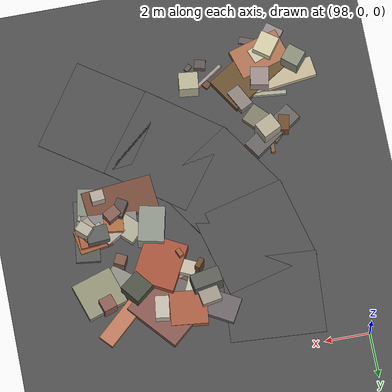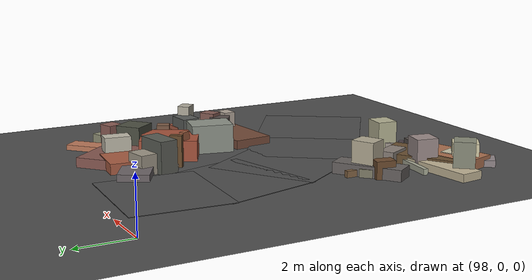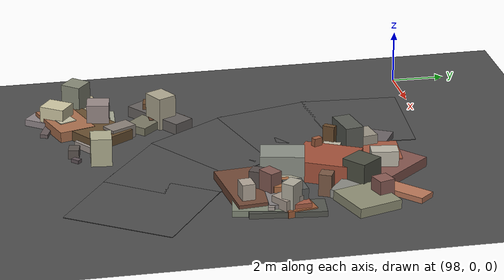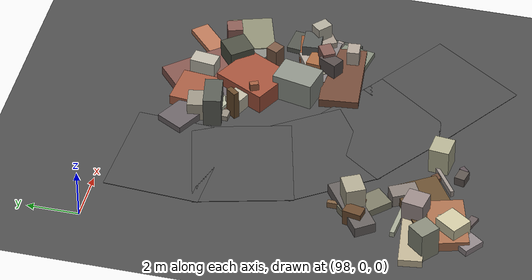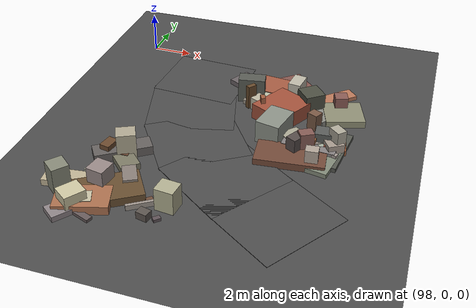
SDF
<sdf version="1.6">
 <world name="navitas_arena">
  <model name="ground_plane">
   <static>true</static>
   <link name="link">
    <collision name="collision">
     <geometry><plane><normal>0 0 1</normal><size>400 400</size></plane></geometry>
     <surface><friction><ode><mu>0.800</mu><mu2>0.800</mu2></ode></friction></surface>
    </collision>
    <visual name="visual">
     <cast_shadows>false</cast_shadows>
     <geometry><plane><normal>0 0 1</normal><size>400 400</size></plane></geometry>
     <material>
      <specular>0.04 0.04 0.04 1</specular>
      <script>
       <uri>file://media/materials/scripts/navitas_asphalt.material</uri>
       <name>Navitas/RealArenaAsphalt</name>
      </script>
     </material>
    </visual>
   </link>
  </model>
  <model name="road_zor_3_9">
   <static>true</static>
   <pose>107.779 -11.646 0.040 0 0 2.543</pose>
   <link name="link">
    <collision name="col"><geometry><box><size>4.133 4.200 0.020</size></box></geometry></collision>
    <visual name="vis">
     <geometry><box><size>4.133 4.200 0.020</size></box></geometry>
     <material>
      <specular>0.04 0.04 0.04 1</specular>
      <script>
       <uri>file://media/materials/scripts/navitas_asphalt.material</uri>
       <name>Navitas/RealArenaAsphalt</name>
      </script>
     </material>
    </visual>
   </link>
  </model>
  <model name="road_zor_3_10">
   <static>true</static>
   <pose>105.192 -9.813 0.040 0 0 2.507</pose>
   <link name="link">
    <collision name="col"><geometry><box><size>4.009 4.200 0.020</size></box></geometry></collision>
    <visual name="vis">
     <geometry><box><size>4.009 4.200 0.020</size></box></geometry>
     <material>
      <specular>0.04 0.04 0.04 1</specular>
      <script>
       <uri>file://media/materials/scripts/navitas_asphalt.material</uri>
       <name>Navitas/RealArenaAsphalt</name>
      </script>
     </material>
    </visual>
   </link>
  </model>
  <model name="road_zor_3_11">
   <static>true</static>
   <pose>103.181 -7.746 0.040 0 0 2.156</pose>
   <link name="link">
    <collision name="col"><geometry><box><size>3.649 4.200 0.020</size></box></geometry></collision>
    <visual name="vis">
     <geometry><box><size>3.649 4.200 0.020</size></box></geometry>
     <material>
      <specular>0.04 0.04 0.04 1</specular>
      <script>
       <uri>file://media/materials/scripts/navitas_asphalt.material</uri>
       <name>Navitas/RealArenaAsphalt</name>
      </script>
     </material>
    </visual>
   </link>
  </model>
  <model name="road_zor_3_12">
   <static>true</static>
   <pose>102.061 -5.200 0.040 0 0 1.823</pose>
   <link name="link">
    <collision name="col"><geometry><box><size>3.792 4.200 0.020</size></box></geometry></collision>
    <visual name="vis">
     <geometry><box><size>3.792 4.200 0.020</size></box></geometry>
     <material>
      <specular>0.04 0.04 0.04 1</specular>
      <script>
       <uri>file://media/materials/scripts/navitas_asphalt.material</uri>
       <name>Navitas/RealArenaAsphalt</name>
      </script>
     </material>
    </visual>
   </link>
  </model>
  <model name="road_zor_3_13">
   <static>true</static>
   <pose>101.792 -2.400 0.040 0 0 1.505</pose>
   <link name="link">
    <collision name="col"><geometry><box><size>3.706 4.200 0.020</size></box></geometry></collision>
    <visual name="vis">
     <geometry><box><size>3.706 4.200 0.020</size></box></geometry>
     <material>
      <specular>0.04 0.04 0.04 1</specular>
      <script>
       <uri>file://media/materials/scripts/navitas_asphalt.material</uri>
       <name>Navitas/RealArenaAsphalt</name>
      </script>
     </material>
    </visual>
   </link>
  </model>
  <model name="deb_zor_4">
   <static>true</static>
   <pose>105.917 -2.960 0.000 0 0 0</pose>
   <link name="link">
    <collision name="col_0">
     <pose>-0.869 -0.371 0.104 0.000 0.000 1.516</pose>
     <geometry><box><size>1.538 1.400 0.208</size></box></geometry>
    </collision>
    <visual name="vis_0">
     <pose>-0.869 -0.371 0.104 0.000 0.000 1.516</pose>
     <geometry><box><size>1.538 1.400 0.208</size></box></geometry>
     <material>
      <ambient>0.53 0.51 0.47 1</ambient>
      <diffuse>0.58 0.55 0.50 1</diffuse>
      <specular>0.05 0.05 0.045 1</specular>
     </material>
    </visual>
    <collision name="col_1">
     <pose>0.757 0.369 0.475 0.000 0.000 1.436</pose>
     <geometry><box><size>0.993 0.613 0.950</size></box></geometry>
    </collision>
    <visual name="vis_1">
     <pose>0.757 0.369 0.475 0.000 0.000 1.436</pose>
     <geometry><box><size>0.993 0.613 0.950</size></box></geometry>
     <material>
      <ambient>0.69 0.66 0.61 1</ambient>
      <diffuse>0.74 0.72 0.66 1</diffuse>
      <specular>0.05 0.05 0.045 1</specular>
     </material>
    </visual>
    <collision name="col_2">
     <pose>0.717 0.454 0.186 0.000 0.000 -0.858</pose>
     <geometry><box><size>2.653 1.747 0.373</size></box></geometry>
    </collision>
    <visual name="vis_2">
     <pose>0.717 0.454 0.186 0.000 0.000 -0.858</pose>
     <geometry><box><size>2.653 1.747 0.373</size></box></geometry>
     <material>
      <ambient>0.48 0.32 0.29 1</ambient>
      <diffuse>0.52 0.34 0.31 1</diffuse>
      <specular>0.05 0.05 0.045 1</specular>
     </material>
    </visual>
    <collision name="col_3">
     <pose>-0.387 0.467 0.201 0.000 0.000 1.464</pose>
     <geometry><box><size>1.514 1.630 0.402</size></box></geometry>
    </collision>
    <visual name="vis_3">
     <pose>-0.387 0.467 0.201 0.000 0.000 1.464</pose>
     <geometry><box><size>1.514 1.630 0.402</size></box></geometry>
     <material>
      <ambient>0.60 0.33 0.24 1</ambient>
      <diffuse>0.65 0.36 0.26 1</diffuse>
      <specular>0.05 0.05 0.045 1</specular>
     </material>
    </visual>
    <collision name="col_4">
     <pose>-0.833 -0.400 0.062 0.000 0.000 -0.284</pose>
     <geometry><box><size>1.115 0.293 0.125</size></box></geometry>
    </collision>
    <visual name="vis_4">
     <pose>-0.833 -0.400 0.062 0.000 0.000 -0.284</pose>
     <geometry><box><size>1.115 0.293 0.125</size></box></geometry>
     <material>
      <ambient>0.46 0.45 0.42 1</ambient>
      <diffuse>0.50 0.49 0.46 1</diffuse>
      <specular>0.05 0.05 0.045 1</specular>
     </material>
    </visual>
   </link>
  </model>
  <model name="deb_zor_24">
   <static>true</static>
   <pose>108.216 -3.610 0.000 0 0 0</pose>
   <link name="link">
    <collision name="col_0">
     <pose>-1.013 -0.223 0.219 0.000 0.000 2.988</pose>
     <geometry><box><size>0.735 0.430 0.438</size></box></geometry>
    </collision>
    <visual name="vis_0">
     <pose>-1.013 -0.223 0.219 0.000 0.000 2.988</pose>
     <geometry><box><size>0.735 0.430 0.438</size></box></geometry>
     <material>
      <ambient>0.39 0.24 0.17 1</ambient>
      <diffuse>0.43 0.26 0.18 1</diffuse>
      <specular>0.05 0.05 0.045 1</specular>
     </material>
    </visual>
    <collision name="col_1">
     <pose>0.015 0.925 0.104 0.000 0.000 3.880</pose>
     <geometry><box><size>2.978 0.718 0.207</size></box></geometry>
    </collision>
    <visual name="vis_1">
     <pose>0.015 0.925 0.104 0.000 0.000 3.880</pose>
     <geometry><box><size>2.978 0.718 0.207</size></box></geometry>
     <material>
      <ambient>0.68 0.43 0.32 1</ambient>
      <diffuse>0.73 0.47 0.35 1</diffuse>
      <specular>0.05 0.05 0.045 1</specular>
     </material>
    </visual>
    <collision name="col_2">
     <pose>-0.131 -0.549 0.159 0.000 0.000 2.506</pose>
     <geometry><box><size>1.549 0.954 0.317</size></box></geometry>
    </collision>
    <visual name="vis_2">
     <pose>-0.131 -0.549 0.159 0.000 0.000 2.506</pose>
     <geometry><box><size>1.549 0.954 0.317</size></box></geometry>
     <material>
      <ambient>0.50 0.50 0.47 1</ambient>
      <diffuse>0.54 0.54 0.51 1</diffuse>
      <specular>0.05 0.05 0.045 1</specular>
     </material>
    </visual>
    <collision name="col_3">
     <pose>-0.624 -0.048 0.538 0.000 0.000 3.810</pose>
     <geometry><box><size>0.987 0.981 1.076</size></box></geometry>
    </collision>
    <visual name="vis_3">
     <pose>-0.624 -0.048 0.538 0.000 0.000 3.810</pose>
     <geometry><box><size>0.987 0.981 1.076</size></box></geometry>
     <material>
      <ambient>0.28 0.29 0.24 1</ambient>
      <diffuse>0.30 0.31 0.26 1</diffuse>
      <specular>0.05 0.05 0.045 1</specular>
     </material>
    </visual>
    <collision name="col_4">
     <pose>0.739 0.391 0.430 0.000 0.000 1.889</pose>
     <geometry><box><size>0.593 0.608 0.861</size></box></geometry>
    </collision>
    <visual name="vis_4">
     <pose>0.739 0.391 0.430 0.000 0.000 1.889</pose>
     <geometry><box><size>0.593 0.608 0.861</size></box></geometry>
     <material>
      <ambient>0.50 0.34 0.30 1</ambient>
      <diffuse>0.54 0.36 0.33 1</diffuse>
      <specular>0.05 0.05 0.045 1</specular>
     </material>
    </visual>
    <collision name="col_5">
     <pose>-1.017 0.056 0.117 0.000 0.000 1.349</pose>
     <geometry><box><size>1.388 0.268 0.235</size></box></geometry>
    </collision>
    <visual name="vis_5">
     <pose>-1.017 0.056 0.117 0.000 0.000 1.349</pose>
     <geometry><box><size>1.388 0.268 0.235</size></box></geometry>
     <material>
      <ambient>0.27 0.28 0.23 1</ambient>
      <diffuse>0.29 0.30 0.25 1</diffuse>
      <specular>0.05 0.05 0.045 1</specular>
     </material>
    </visual>
    <collision name="col_6">
     <pose>0.996 -0.229 0.175 0.000 0.000 3.455</pose>
     <geometry><box><size>1.843 1.695 0.351</size></box></geometry>
    </collision>
    <visual name="vis_6">
     <pose>0.996 -0.229 0.175 0.000 0.000 3.455</pose>
     <geometry><box><size>1.843 1.695 0.351</size></box></geometry>
     <material>
      <ambient>0.52 0.52 0.43 1</ambient>
      <diffuse>0.56 0.56 0.46 1</diffuse>
      <specular>0.05 0.05 0.045 1</specular>
     </material>
    </visual>
   </link>
  </model>
  <model name="deb_zor_90">
   <static>true</static>
   <pose>105.127 -2.746 0.000 0 0 0</pose>
   <link name="link">
    <collision name="col_0">
     <pose>-0.333 0.004 0.153 0.000 0.000 2.628</pose>
     <geometry><box><size>3.080 1.144 0.305</size></box></geometry>
    </collision>
    <visual name="vis_0">
     <pose>-0.333 0.004 0.153 0.000 0.000 2.628</pose>
     <geometry><box><size>3.080 1.144 0.305</size></box></geometry>
     <material>
      <ambient>0.39 0.36 0.37 1</ambient>
      <diffuse>0.42 0.39 0.40 1</diffuse>
      <specular>0.05 0.05 0.045 1</specular>
     </material>
    </visual>
    <collision name="col_1">
     <pose>-0.031 -0.489 0.105 0.000 0.000 1.856</pose>
     <geometry><box><size>1.610 1.021 0.210</size></box></geometry>
    </collision>
    <visual name="vis_1">
     <pose>-0.031 -0.489 0.105 0.000 0.000 1.856</pose>
     <geometry><box><size>1.610 1.021 0.210</size></box></geometry>
     <material>
      <ambient>0.39 0.28 0.23 1</ambient>
      <diffuse>0.42 0.30 0.25 1</diffuse>
      <specular>0.05 0.05 0.045 1</specular>
     </material>
    </visual>
    <collision name="col_2">
     <pose>-0.590 -0.078 0.378 0.000 0.000 1.746</pose>
     <geometry><box><size>0.722 0.877 0.756</size></box></geometry>
    </collision>
    <visual name="vis_2">
     <pose>-0.590 -0.078 0.378 0.000 0.000 1.746</pose>
     <geometry><box><size>0.722 0.877 0.756</size></box></geometry>
     <material>
      <ambient>0.57 0.54 0.48 1</ambient>
      <diffuse>0.61 0.58 0.52 1</diffuse>
      <specular>0.05 0.05 0.045 1</specular>
     </material>
    </visual>
    <collision name="col_3">
     <pose>0.079 -0.286 0.165 0.000 0.000 1.030</pose>
     <geometry><box><size>0.456 0.334 0.330</size></box></geometry>
    </collision>
    <visual name="vis_3">
     <pose>0.079 -0.286 0.165 0.000 0.000 1.030</pose>
     <geometry><box><size>0.456 0.334 0.330</size></box></geometry>
     <material>
      <ambient>0.67 0.66 0.56 1</ambient>
      <diffuse>0.72 0.71 0.60 1</diffuse>
      <specular>0.05 0.05 0.045 1</specular>
     </material>
    </visual>
    <collision name="col_4">
     <pose>0.059 -0.212 0.182 0.000 0.000 1.119</pose>
     <geometry><box><size>1.961 0.928 0.364</size></box></geometry>
    </collision>
    <visual name="vis_4">
     <pose>0.059 -0.212 0.182 0.000 0.000 1.119</pose>
     <geometry><box><size>1.961 0.928 0.364</size></box></geometry>
     <material>
      <ambient>0.68 0.68 0.60 1</ambient>
      <diffuse>0.73 0.74 0.65 1</diffuse>
      <specular>0.05 0.05 0.045 1</specular>
     </material>
    </visual>
   </link>
  </model>
  <model name="deb_zor_169">
   <static>true</static>
   <pose>103.278 -12.954 0.000 0 0 0</pose>
   <link name="link">
    <collision name="col_0">
     <pose>-0.290 -0.443 0.172 0.000 0.000 2.914</pose>
     <geometry><box><size>0.502 0.396 0.344</size></box></geometry>
    </collision>
    <visual name="vis_0">
     <pose>-0.290 -0.443 0.172 0.000 0.000 2.914</pose>
     <geometry><box><size>0.502 0.396 0.344</size></box></geometry>
     <material>
      <ambient>0.33 0.31 0.29 1</ambient>
      <diffuse>0.36 0.33 0.31 1</diffuse>
      <specular>0.05 0.05 0.045 1</specular>
     </material>
    </visual>
    <collision name="col_1">
     <pose>0.247 -0.432 0.069 0.000 0.000 2.336</pose>
     <geometry><box><size>0.211 0.323 0.137</size></box></geometry>
    </collision>
    <visual name="vis_1">
     <pose>0.247 -0.432 0.069 0.000 0.000 2.336</pose>
     <geometry><box><size>0.211 0.323 0.137</size></box></geometry>
     <material>
      <ambient>0.34 0.29 0.31 1</ambient>
      <diffuse>0.37 0.32 0.34 1</diffuse>
      <specular>0.05 0.05 0.045 1</specular>
     </material>
    </visual>
    <collision name="col_2">
     <pose>-0.410 0.477 0.085 0.000 0.000 2.315</pose>
     <geometry><box><size>0.337 0.306 0.169</size></box></geometry>
    </collision>
    <visual name="vis_2">
     <pose>-0.410 0.477 0.085 0.000 0.000 2.315</pose>
     <geometry><box><size>0.337 0.306 0.169</size></box></geometry>
     <material>
      <ambient>0.40 0.28 0.21 1</ambient>
      <diffuse>0.43 0.30 0.22 1</diffuse>
      <specular>0.05 0.05 0.045 1</specular>
     </material>
    </visual>
    <collision name="col_3">
     <pose>0.388 0.465 0.531 0.000 0.000 3.031</pose>
     <geometry><box><size>0.856 0.775 1.062</size></box></geometry>
    </collision>
    <visual name="vis_3">
     <pose>0.388 0.465 0.531 0.000 0.000 3.031</pose>
     <geometry><box><size>0.856 0.775 1.062</size></box></geometry>
     <material>
      <ambient>0.65 0.64 0.53 1</ambient>
      <diffuse>0.70 0.69 0.57 1</diffuse>
      <specular>0.05 0.05 0.045 1</specular>
     </material>
    </visual>
    <collision name="col_4">
     <pose>-0.396 0.273 0.124 0.000 0.000 3.730</pose>
     <geometry><box><size>1.881 0.135 0.248</size></box></geometry>
    </collision>
    <visual name="vis_4">
     <pose>-0.396 0.273 0.124 0.000 0.000 3.730</pose>
     <geometry><box><size>1.881 0.135 0.248</size></box></geometry>
     <material>
      <ambient>0.57 0.53 0.51 1</ambient>
      <diffuse>0.62 0.58 0.55 1</diffuse>
      <specular>0.05 0.05 0.045 1</specular>
     </material>
    </visual>
   </link>
  </model>
  <model name="deb_zor_230">
   <static>true</static>
   <pose>99.409 -12.967 0.000 0 0 0</pose>
   <link name="link">
    <collision name="col_0">
     <pose>0.235 -0.076 0.172 0.000 0.000 2.997</pose>
     <geometry><box><size>1.940 0.258 0.343</size></box></geometry>
    </collision>
    <visual name="vis_0">
     <pose>0.235 -0.076 0.172 0.000 0.000 2.997</pose>
     <geometry><box><size>1.940 0.258 0.343</size></box></geometry>
     <material>
      <ambient>0.55 0.34 0.23 1</ambient>
      <diffuse>0.60 0.37 0.25 1</diffuse>
      <specular>0.05 0.05 0.045 1</specular>
     </material>
    </visual>
    <collision name="col_1">
     <pose>-0.747 0.686 0.099 0.000 0.000 3.242</pose>
     <geometry><box><size>1.246 0.169 0.198</size></box></geometry>
    </collision>
    <visual name="vis_1">
     <pose>-0.747 0.686 0.099 0.000 0.000 3.242</pose>
     <geometry><box><size>1.246 0.169 0.198</size></box></geometry>
     <material>
      <ambient>0.71 0.63 0.56 1</ambient>
      <diffuse>0.77 0.68 0.61 1</diffuse>
      <specular>0.05 0.05 0.045 1</specular>
     </material>
    </visual>
    <collision name="col_2">
     <pose>0.072 0.727 0.152 0.000 0.000 3.269</pose>
     <geometry><box><size>2.894 0.888 0.303</size></box></geometry>
    </collision>
    <visual name="vis_2">
     <pose>0.072 0.727 0.152 0.000 0.000 3.269</pose>
     <geometry><box><size>2.894 0.888 0.303</size></box></geometry>
     <material>
      <ambient>0.69 0.65 0.54 1</ambient>
      <diffuse>0.75 0.70 0.58 1</diffuse>
      <specular>0.05 0.05 0.045 1</specular>
     </material>
    </visual>
    <collision name="col_3">
     <pose>-0.492 0.227 0.625 0.000 0.000 0.877</pose>
     <geometry><box><size>0.776 0.806 1.249</size></box></geometry>
    </collision>
    <visual name="vis_3">
     <pose>-0.492 0.227 0.625 0.000 0.000 0.877</pose>
     <geometry><box><size>0.776 0.806 1.249</size></box></geometry>
     <material>
      <ambient>0.49 0.50 0.44 1</ambient>
      <diffuse>0.53 0.54 0.47 1</diffuse>
      <specular>0.05 0.05 0.045 1</specular>
     </material>
    </visual>
   </link>
  </model>
  <model name="deb_zor_287">
   <static>true</static>
   <pose>108.343 -6.725 0.000 0 0 0</pose>
   <link name="link">
    <collision name="col_0">
     <pose>-0.649 -0.624 0.485 0.000 0.000 -0.519</pose>
     <geometry><box><size>0.512 0.774 0.969</size></box></geometry>
    </collision>
    <visual name="vis_0">
     <pose>-0.649 -0.624 0.485 0.000 0.000 -0.519</pose>
     <geometry><box><size>0.512 0.774 0.969</size></box></geometry>
     <material>
      <ambient>0.32 0.27 0.27 1</ambient>
      <diffuse>0.34 0.30 0.29 1</diffuse>
      <specular>0.05 0.05 0.045 1</specular>
     </material>
    </visual>
    <collision name="col_1">
     <pose>0.903 -0.005 0.305 0.000 0.000 -1.019</pose>
     <geometry><box><size>0.828 0.755 0.610</size></box></geometry>
    </collision>
    <visual name="vis_1">
     <pose>0.903 -0.005 0.305 0.000 0.000 -1.019</pose>
     <geometry><box><size>0.828 0.755 0.610</size></box></geometry>
     <material>
      <ambient>0.60 0.55 0.50 1</ambient>
      <diffuse>0.65 0.60 0.55 1</diffuse>
      <specular>0.05 0.05 0.045 1</specular>
     </material>
    </visual>
    <collision name="col_2">
     <pose>-0.304 -0.853 0.080 0.000 0.000 -0.610</pose>
     <geometry><box><size>1.538 0.200 0.159</size></box></geometry>
    </collision>
    <visual name="vis_2">
     <pose>-0.304 -0.853 0.080 0.000 0.000 -0.610</pose>
     <geometry><box><size>1.538 0.200 0.159</size></box></geometry>
     <material>
      <ambient>0.58 0.54 0.47 1</ambient>
      <diffuse>0.62 0.58 0.51 1</diffuse>
      <specular>0.05 0.05 0.045 1</specular>
     </material>
    </visual>
    <collision name="col_3">
     <pose>0.597 0.543 0.091 0.000 0.000 0.360</pose>
     <geometry><box><size>1.055 0.250 0.183</size></box></geometry>
    </collision>
    <visual name="vis_3">
     <pose>0.597 0.543 0.091 0.000 0.000 0.360</pose>
     <geometry><box><size>1.055 0.250 0.183</size></box></geometry>
     <material>
      <ambient>0.50 0.47 0.44 1</ambient>
      <diffuse>0.54 0.51 0.48 1</diffuse>
      <specular>0.05 0.05 0.045 1</specular>
     </material>
    </visual>
    <collision name="col_4">
     <pose>0.910 0.266 0.211 0.000 0.000 0.060</pose>
     <geometry><box><size>0.828 0.972 0.422</size></box></geometry>
    </collision>
    <visual name="vis_4">
     <pose>0.910 0.266 0.211 0.000 0.000 0.060</pose>
     <geometry><box><size>0.828 0.972 0.422</size></box></geometry>
     <material>
      <ambient>0.60 0.33 0.25 1</ambient>
      <diffuse>0.65 0.36 0.27 1</diffuse>
      <specular>0.05 0.05 0.045 1</specular>
     </material>
    </visual>
    <collision name="col_5">
     <pose>0.536 0.161 0.186 0.000 0.000 -1.080</pose>
     <geometry><box><size>0.630 0.800 0.373</size></box></geometry>
    </collision>
    <visual name="vis_5">
     <pose>0.536 0.161 0.186 0.000 0.000 -1.080</pose>
     <geometry><box><size>0.630 0.800 0.373</size></box></geometry>
     <material>
      <ambient>0.60 0.62 0.56 1</ambient>
      <diffuse>0.64 0.67 0.61 1</diffuse>
      <specular>0.05 0.05 0.045 1</specular>
     </material>
    </visual>
   </link>
  </model>
  <model name="deb_zor_295">
   <static>true</static>
   <pose>108.441 -7.182 0.000 0 0 0</pose>
   <link name="link">
    <collision name="col_0">
     <pose>0.945 0.570 0.596 0.000 0.000 0.824</pose>
     <geometry><box><size>0.475 0.632 1.191</size></box></geometry>
    </collision>
    <visual name="vis_0">
     <pose>0.945 0.570 0.596 0.000 0.000 0.824</pose>
     <geometry><box><size>0.475 0.632 1.191</size></box></geometry>
     <material>
      <ambient>0.64 0.62 0.57 1</ambient>
      <diffuse>0.69 0.67 0.61 1</diffuse>
      <specular>0.05 0.05 0.045 1</specular>
     </material>
    </visual>
    <collision name="col_1">
     <pose>-0.372 0.079 0.547 0.000 0.000 0.528</pose>
     <geometry><box><size>0.647 0.500 1.093</size></box></geometry>
    </collision>
    <visual name="vis_1">
     <pose>-0.372 0.079 0.547 0.000 0.000 0.528</pose>
     <geometry><box><size>0.647 0.500 1.093</size></box></geometry>
     <material>
      <ambient>0.48 0.33 0.31 1</ambient>
      <diffuse>0.52 0.36 0.33 1</diffuse>
      <specular>0.05 0.05 0.045 1</specular>
     </material>
    </visual>
    <collision name="col_2">
     <pose>-0.200 0.637 0.203 0.000 0.000 2.111</pose>
     <geometry><box><size>0.878 0.960 0.407</size></box></geometry>
    </collision>
    <visual name="vis_2">
     <pose>-0.200 0.637 0.203 0.000 0.000 2.111</pose>
     <geometry><box><size>0.878 0.960 0.407</size></box></geometry>
     <material>
      <ambient>0.64 0.60 0.57 1</ambient>
      <diffuse>0.69 0.65 0.61 1</diffuse>
      <specular>0.05 0.05 0.045 1</specular>
     </material>
    </visual>
    <collision name="col_3">
     <pose>0.825 0.431 0.103 0.000 0.000 1.451</pose>
     <geometry><box><size>2.761 1.069 0.207</size></box></geometry>
    </collision>
    <visual name="vis_3">
     <pose>0.825 0.431 0.103 0.000 0.000 1.451</pose>
     <geometry><box><size>2.761 1.069 0.207</size></box></geometry>
     <material>
      <ambient>0.31 0.32 0.29 1</ambient>
      <diffuse>0.33 0.34 0.31 1</diffuse>
      <specular>0.05 0.05 0.045 1</specular>
     </material>
    </visual>
    <collision name="col_4">
     <pose>0.108 -0.876 0.473 0.000 0.000 0.093</pose>
     <geometry><box><size>0.581 0.478 0.947</size></box></geometry>
    </collision>
    <visual name="vis_4">
     <pose>0.108 -0.876 0.473 0.000 0.000 0.093</pose>
     <geometry><box><size>0.581 0.478 0.947</size></box></geometry>
     <material>
      <ambient>0.63 0.59 0.55 1</ambient>
      <diffuse>0.69 0.64 0.59 1</diffuse>
      <specular>0.05 0.05 0.045 1</specular>
     </material>
    </visual>
    <collision name="col_5">
     <pose>-0.853 -0.672 0.173 0.000 0.000 0.099</pose>
     <geometry><box><size>3.128 1.524 0.346</size></box></geometry>
    </collision>
    <visual name="vis_5">
     <pose>-0.853 -0.672 0.173 0.000 0.000 0.099</pose>
     <geometry><box><size>3.128 1.524 0.346</size></box></geometry>
     <material>
      <ambient>0.42 0.27 0.21 1</ambient>
      <diffuse>0.45 0.29 0.22 1</diffuse>
      <specular>0.05 0.05 0.045 1</specular>
     </material>
    </visual>
    <collision name="col_6">
     <pose>0.611 0.779 0.127 0.000 0.000 0.166</pose>
     <geometry><box><size>1.459 1.108 0.254</size></box></geometry>
    </collision>
    <visual name="vis_6">
     <pose>0.611 0.779 0.127 0.000 0.000 0.166</pose>
     <geometry><box><size>1.459 1.108 0.254</size></box></geometry>
     <material>
      <ambient>0.57 0.34 0.20 1</ambient>
      <diffuse>0.62 0.36 0.22 1</diffuse>
      <specular>0.05 0.05 0.045 1</specular>
     </material>
    </visual>
   </link>
  </model>
  <model name="deb_zor_310">
   <static>true</static>
   <pose>100.354 -13.752 0.000 0 0 0</pose>
   <link name="link">
    <collision name="col_0">
     <pose>-0.047 0.399 0.197 0.000 0.000 3.432</pose>
     <geometry><box><size>2.303 1.406 0.394</size></box></geometry>
    </collision>
    <visual name="vis_0">
     <pose>-0.047 0.399 0.197 0.000 0.000 3.432</pose>
     <geometry><box><size>2.303 1.406 0.394</size></box></geometry>
     <material>
      <ambient>0.62 0.40 0.28 1</ambient>
      <diffuse>0.67 0.44 0.31 1</diffuse>
      <specular>0.05 0.05 0.045 1</specular>
     </material>
    </visual>
    <collision name="col_1">
     <pose>0.095 -0.283 0.070 0.000 0.000 2.779</pose>
     <geometry><box><size>1.296 0.297 0.140</size></box></geometry>
    </collision>
    <visual name="vis_1">
     <pose>0.095 -0.283 0.070 0.000 0.000 2.779</pose>
     <geometry><box><size>1.296 0.297 0.140</size></box></geometry>
     <material>
      <ambient>0.38 0.33 0.33 1</ambient>
      <diffuse>0.41 0.36 0.36 1</diffuse>
      <specular>0.05 0.05 0.045 1</specular>
     </material>
    </visual>
    <collision name="col_2">
     <pose>0.018 0.358 0.212 0.000 0.000 3.519</pose>
     <geometry><box><size>0.668 0.664 0.423</size></box></geometry>
    </collision>
    <visual name="vis_2">
     <pose>0.018 0.358 0.212 0.000 0.000 3.519</pose>
     <geometry><box><size>0.668 0.664 0.423</size></box></geometry>
     <material>
      <ambient>0.72 0.70 0.60 1</ambient>
      <diffuse>0.78 0.76 0.65 1</diffuse>
      <specular>0.05 0.05 0.045 1</specular>
     </material>
    </visual>
    <collision name="col_3">
     <pose>-0.385 0.126 0.427 0.000 0.000 0.948</pose>
     <geometry><box><size>0.968 0.842 0.853</size></box></geometry>
    </collision>
    <visual name="vis_3">
     <pose>-0.385 0.126 0.427 0.000 0.000 0.948</pose>
     <geometry><box><size>0.968 0.842 0.853</size></box></geometry>
     <material>
      <ambient>0.75 0.72 0.59 1</ambient>
      <diffuse>0.81 0.78 0.64 1</diffuse>
      <specular>0.05 0.05 0.045 1</specular>
     </material>
    </visual>
    <collision name="col_4">
     <pose>-0.137 0.030 0.105 0.000 0.000 1.773</pose>
     <geometry><box><size>0.188 0.284 0.210</size></box></geometry>
    </collision>
    <visual name="vis_4">
     <pose>-0.137 0.030 0.105 0.000 0.000 1.773</pose>
     <geometry><box><size>0.188 0.284 0.210</size></box></geometry>
     <material>
      <ambient>0.48 0.48 0.45 1</ambient>
      <diffuse>0.52 0.52 0.49 1</diffuse>
      <specular>0.05 0.05 0.045 1</specular>
     </material>
    </visual>
    <collision name="col_5">
     <pose>-0.207 0.216 0.125 0.000 0.000 0.917</pose>
     <geometry><box><size>2.554 0.831 0.251</size></box></geometry>
    </collision>
    <visual name="vis_5">
     <pose>-0.207 0.216 0.125 0.000 0.000 0.917</pose>
     <geometry><box><size>2.554 0.831 0.251</size></box></geometry>
     <material>
      <ambient>0.52 0.49 0.49 1</ambient>
      <diffuse>0.56 0.52 0.53 1</diffuse>
      <specular>0.05 0.05 0.045 1</specular>
     </material>
    </visual>
   </link>
  </model>
  <model name="deb_zor_359">
   <static>true</static>
   <pose>100.739 -11.882 0.000 0 0 0</pose>
   <link name="link">
    <collision name="col_0">
     <pose>-0.358 -0.007 0.119 0.000 0.000 3.484</pose>
     <geometry><box><size>0.471 0.301 0.239</size></box></geometry>
    </collision>
    <visual name="vis_0">
     <pose>-0.358 -0.007 0.119 0.000 0.000 3.484</pose>
     <geometry><box><size>0.471 0.301 0.239</size></box></geometry>
     <material>
      <ambient>0.45 0.44 0.39 1</ambient>
      <diffuse>0.49 0.47 0.42 1</diffuse>
      <specular>0.05 0.05 0.045 1</specular>
     </material>
    </visual>
    <collision name="col_1">
     <pose>0.247 -0.658 0.190 0.000 0.000 3.712</pose>
     <geometry><box><size>2.954 1.734 0.379</size></box></geometry>
    </collision>
    <visual name="vis_1">
     <pose>0.247 -0.658 0.190 0.000 0.000 3.712</pose>
     <geometry><box><size>2.954 1.734 0.379</size></box></geometry>
     <material>
      <ambient>0.38 0.29 0.18 1</ambient>
      <diffuse>0.41 0.31 0.19 1</diffuse>
      <specular>0.05 0.05 0.045 1</specular>
     </material>
    </visual>
    <collision name="col_2">
     <pose>0.808 0.400 0.245 0.000 0.000 2.054</pose>
     <geometry><box><size>1.037 0.620 0.489</size></box></geometry>
    </collision>
    <visual name="vis_2">
     <pose>0.808 0.400 0.245 0.000 0.000 2.054</pose>
     <geometry><box><size>1.037 0.620 0.489</size></box></geometry>
     <material>
      <ambient>0.50 0.46 0.44 1</ambient>
      <diffuse>0.54 0.50 0.47 1</diffuse>
      <specular>0.05 0.05 0.045 1</specular>
     </material>
    </visual>
    <collision name="col_3">
     <pose>-0.283 0.313 0.111 0.000 0.000 3.039</pose>
     <geometry><box><size>2.020 0.174 0.223</size></box></geometry>
    </collision>
    <visual name="vis_3">
     <pose>-0.283 0.313 0.111 0.000 0.000 3.039</pose>
     <geometry><box><size>2.020 0.174 0.223</size></box></geometry>
     <material>
      <ambient>0.60 0.61 0.54 1</ambient>
      <diffuse>0.65 0.66 0.58 1</diffuse>
      <specular>0.05 0.05 0.045 1</specular>
     </material>
    </visual>
    <collision name="col_4">
     <pose>-0.195 -0.248 0.543 0.000 0.000 1.390</pose>
     <geometry><box><size>0.836 0.801 1.086</size></box></geometry>
    </collision>
    <visual name="vis_4">
     <pose>-0.195 -0.248 0.543 0.000 0.000 1.390</pose>
     <geometry><box><size>0.836 0.801 1.086</size></box></geometry>
     <material>
      <ambient>0.55 0.50 0.49 1</ambient>
      <diffuse>0.60 0.54 0.53 1</diffuse>
      <specular>0.05 0.05 0.045 1</specular>
     </material>
    </visual>
    <collision name="col_5">
     <pose>-0.116 -0.262 0.111 0.000 0.000 2.217</pose>
     <geometry><box><size>0.511 0.370 0.221</size></box></geometry>
    </collision>
    <visual name="vis_5">
     <pose>-0.116 -0.262 0.111 0.000 0.000 2.217</pose>
     <geometry><box><size>0.511 0.370 0.221</size></box></geometry>
     <material>
      <ambient>0.68 0.39 0.31 1</ambient>
      <diffuse>0.74 0.42 0.34 1</diffuse>
      <specular>0.05 0.05 0.045 1</specular>
     </material>
    </visual>
   </link>
  </model>
  <model name="deb_zor_369">
   <static>true</static>
   <pose>108.470 -7.299 0.000 0 0 0</pose>
   <link name="link">
    <collision name="col_0">
     <pose>-0.894 0.656 0.196 0.000 0.000 2.367</pose>
     <geometry><box><size>1.420 0.922 0.392</size></box></geometry>
    </collision>
    <visual name="vis_0">
     <pose>-0.894 0.656 0.196 0.000 0.000 2.367</pose>
     <geometry><box><size>1.420 0.922 0.392</size></box></geometry>
     <material>
      <ambient>0.62 0.61 0.54 1</ambient>
      <diffuse>0.67 0.66 0.58 1</diffuse>
      <specular>0.05 0.05 0.045 1</specular>
     </material>
    </visual>
    <collision name="col_1">
     <pose>0.021 0.298 0.178 0.000 0.000 2.797</pose>
     <geometry><box><size>2.250 0.230 0.356</size></box></geometry>
    </collision>
    <visual name="vis_1">
     <pose>0.021 0.298 0.178 0.000 0.000 2.797</pose>
     <geometry><box><size>2.250 0.230 0.356</size></box></geometry>
     <material>
      <ambient>0.60 0.56 0.53 1</ambient>
      <diffuse>0.65 0.61 0.58 1</diffuse>
      <specular>0.05 0.05 0.045 1</specular>
     </material>
    </visual>
    <collision name="col_2">
     <pose>0.176 0.560 0.122 0.000 0.000 2.833</pose>
     <geometry><box><size>0.208 0.235 0.244</size></box></geometry>
    </collision>
    <visual name="vis_2">
     <pose>0.176 0.560 0.122 0.000 0.000 2.833</pose>
     <geometry><box><size>0.208 0.235 0.244</size></box></geometry>
     <material>
      <ambient>0.64 0.39 0.29 1</ambient>
      <diffuse>0.70 0.42 0.32 1</diffuse>
      <specular>0.05 0.05 0.045 1</specular>
     </material>
    </visual>
    <collision name="col_3">
     <pose>0.309 -0.302 0.107 0.000 0.000 1.377</pose>
     <geometry><box><size>2.005 1.510 0.215</size></box></geometry>
    </collision>
    <visual name="vis_3">
     <pose>0.309 -0.302 0.107 0.000 0.000 1.377</pose>
     <geometry><box><size>2.005 1.510 0.215</size></box></geometry>
     <material>
      <ambient>0.48 0.50 0.44 1</ambient>
      <diffuse>0.51 0.54 0.47 1</diffuse>
      <specular>0.05 0.05 0.045 1</specular>
     </material>
    </visual>
    <collision name="col_4">
     <pose>-0.238 0.327 0.183 0.000 0.000 3.070</pose>
     <geometry><box><size>2.444 0.723 0.366</size></box></geometry>
    </collision>
    <visual name="vis_4">
     <pose>-0.238 0.327 0.183 0.000 0.000 3.070</pose>
     <geometry><box><size>2.444 0.723 0.366</size></box></geometry>
     <material>
      <ambient>0.48 0.46 0.46 1</ambient>
      <diffuse>0.52 0.50 0.50 1</diffuse>
      <specular>0.05 0.05 0.045 1</specular>
     </material>
    </visual>
    <collision name="col_5">
     <pose>-0.400 0.594 0.305 0.000 0.000 3.011</pose>
     <geometry><box><size>0.856 0.592 0.609</size></box></geometry>
    </collision>
    <visual name="vis_5">
     <pose>-0.400 0.594 0.305 0.000 0.000 3.011</pose>
     <geometry><box><size>0.856 0.592 0.609</size></box></geometry>
     <material>
      <ambient>0.61 0.39 0.24 1</ambient>
      <diffuse>0.66 0.42 0.26 1</diffuse>
      <specular>0.05 0.05 0.045 1</specular>
     </material>
    </visual>
    <collision name="col_6">
     <pose>0.377 0.926 0.416 0.000 0.000 1.642</pose>
     <geometry><box><size>0.709 0.964 0.832</size></box></geometry>
    </collision>
    <visual name="vis_6">
     <pose>0.377 0.926 0.416 0.000 0.000 1.642</pose>
     <geometry><box><size>0.709 0.964 0.832</size></box></geometry>
     <material>
      <ambient>0.33 0.34 0.32 1</ambient>
      <diffuse>0.35 0.36 0.35 1</diffuse>
      <specular>0.05 0.05 0.045 1</specular>
     </material>
    </visual>
   </link>
  </model>
  <model name="deb_zor_385">
   <static>true</static>
   <pose>100.351 -9.863 0.000 0 0 0</pose>
   <link name="link">
    <collision name="col_0">
     <pose>0.450 0.226 0.096 0.000 0.000 2.412</pose>
     <geometry><box><size>0.278 0.337 0.193</size></box></geometry>
    </collision>
    <visual name="vis_0">
     <pose>0.450 0.226 0.096 0.000 0.000 2.412</pose>
     <geometry><box><size>0.278 0.337 0.193</size></box></geometry>
     <material>
      <ambient>0.69 0.63 0.57 1</ambient>
      <diffuse>0.75 0.68 0.61 1</diffuse>
      <specular>0.05 0.05 0.045 1</specular>
     </material>
    </visual>
    <collision name="col_1">
     <pose>0.062 0.109 0.210 0.000 0.000 3.746</pose>
     <geometry><box><size>2.606 0.836 0.419</size></box></geometry>
    </collision>
    <visual name="vis_1">
     <pose>0.062 0.109 0.210 0.000 0.000 3.746</pose>
     <geometry><box><size>2.606 0.836 0.419</size></box></geometry>
     <material>
      <ambient>0.37 0.35 0.34 1</ambient>
      <diffuse>0.40 0.38 0.37 1</diffuse>
      <specular>0.05 0.05 0.045 1</specular>
     </material>
    </visual>
    <collision name="col_2">
     <pose>0.184 0.548 0.122 0.000 0.000 1.558</pose>
     <geometry><box><size>1.009 0.174 0.243</size></box></geometry>
    </collision>
    <visual name="vis_2">
     <pose>0.184 0.548 0.122 0.000 0.000 1.558</pose>
     <geometry><box><size>1.009 0.174 0.243</size></box></geometry>
     <material>
      <ambient>0.47 0.35 0.24 1</ambient>
      <diffuse>0.50 0.38 0.26 1</diffuse>
      <specular>0.05 0.05 0.045 1</specular>
     </material>
    </visual>
    <collision name="col_3">
     <pose>0.319 -0.249 0.164 0.000 0.000 1.559</pose>
     <geometry><box><size>0.231 0.417 0.329</size></box></geometry>
    </collision>
    <visual name="vis_3">
     <pose>0.319 -0.249 0.164 0.000 0.000 1.559</pose>
     <geometry><box><size>0.231 0.417 0.329</size></box></geometry>
     <material>
      <ambient>0.39 0.26 0.18 1</ambient>
      <diffuse>0.42 0.28 0.20 1</diffuse>
      <specular>0.05 0.05 0.045 1</specular>
     </material>
    </visual>
    <collision name="col_4">
     <pose>-0.473 -0.086 0.330 0.000 0.000 1.364</pose>
     <geometry><box><size>0.712 0.477 0.660</size></box></geometry>
    </collision>
    <visual name="vis_4">
     <pose>-0.473 -0.086 0.330 0.000 0.000 1.364</pose>
     <geometry><box><size>0.712 0.477 0.660</size></box></geometry>
     <material>
      <ambient>0.39 0.27 0.17 1</ambient>
      <diffuse>0.42 0.29 0.18 1</diffuse>
      <specular>0.05 0.05 0.045 1</specular>
     </material>
    </visual>
    <collision name="col_5">
     <pose>0.299 -0.319 0.153 0.000 0.000 2.345</pose>
     <geometry><box><size>1.848 0.888 0.305</size></box></geometry>
    </collision>
    <visual name="vis_5">
     <pose>0.299 -0.319 0.153 0.000 0.000 2.345</pose>
     <geometry><box><size>1.848 0.888 0.305</size></box></geometry>
     <material>
      <ambient>0.45 0.44 0.37 1</ambient>
      <diffuse>0.49 0.48 0.40 1</diffuse>
      <specular>0.05 0.05 0.045 1</specular>
     </material>
    </visual>
    <collision name="col_6">
     <pose>0.274 0.111 0.622 0.000 0.000 3.608</pose>
     <geometry><box><size>0.872 0.746 1.245</size></box></geometry>
    </collision>
    <visual name="vis_6">
     <pose>0.274 0.111 0.622 0.000 0.000 3.608</pose>
     <geometry><box><size>0.872 0.746 1.245</size></box></geometry>
     <material>
      <ambient>0.64 0.61 0.53 1</ambient>
      <diffuse>0.69 0.66 0.57 1</diffuse>
      <specular>0.05 0.05 0.045 1</specular>
     </material>
    </visual>
   </link>
  </model>
  <model name="chic_zor_3">
   <static>true</static>
   <pose>106.223 -4.465 0.000 0 0 0</pose>
   <link name="link">
    <collision name="col_0">
     <pose>-0.817 0.144 0.307 0.000 0.000 1.137</pose>
     <geometry><box><size>0.635 1.104 0.614</size></box></geometry>
    </collision>
    <visual name="vis_0">
     <pose>-0.817 0.144 0.307 0.000 0.000 1.137</pose>
     <geometry><box><size>0.635 1.104 0.614</size></box></geometry>
     <material>
      <ambient>0.70 0.66 0.59 1</ambient>
      <diffuse>0.75 0.72 0.64 1</diffuse>
      <specular>0.05 0.05 0.045 1</specular>
     </material>
    </visual>
    <collision name="col_1">
     <pose>-0.730 -0.360 0.543 0.000 0.000 0.425</pose>
     <geometry><box><size>0.208 0.339 1.085</size></box></geometry>
    </collision>
    <visual name="vis_1">
     <pose>-0.730 -0.360 0.543 0.000 0.000 0.425</pose>
     <geometry><box><size>0.208 0.339 1.085</size></box></geometry>
     <material>
      <ambient>0.58 0.35 0.23 1</ambient>
      <diffuse>0.63 0.37 0.25 1</diffuse>
      <specular>0.05 0.05 0.045 1</specular>
     </material>
    </visual>
    <collision name="col_2">
     <pose>1.843 -0.592 0.413 0.000 0.000 1.114</pose>
     <geometry><box><size>0.477 0.497 0.827</size></box></geometry>
    </collision>
    <visual name="vis_2">
     <pose>1.843 -0.592 0.413 0.000 0.000 1.114</pose>
     <geometry><box><size>0.477 0.497 0.827</size></box></geometry>
     <material>
      <ambient>0.45 0.32 0.25 1</ambient>
      <diffuse>0.48 0.35 0.27 1</diffuse>
      <specular>0.05 0.05 0.045 1</specular>
     </material>
    </visual>
    <collision name="col_3">
     <pose>0.172 -0.163 0.392 0.000 0.000 -0.488</pose>
     <geometry><box><size>1.882 2.164 0.784</size></box></geometry>
    </collision>
    <visual name="vis_3">
     <pose>0.172 -0.163 0.392 0.000 0.000 -0.488</pose>
     <geometry><box><size>1.882 2.164 0.784</size></box></geometry>
     <material>
      <ambient>0.59 0.30 0.21 1</ambient>
      <diffuse>0.64 0.32 0.23 1</diffuse>
      <specular>0.05 0.05 0.045 1</specular>
     </material>
    </visual>
    <collision name="col_4">
     <pose>0.232 -1.857 0.544 0.000 0.000 1.352</pose>
     <geometry><box><size>1.598 1.142 1.087</size></box></geometry>
    </collision>
    <visual name="vis_4">
     <pose>0.232 -1.857 0.544 0.000 0.000 1.352</pose>
     <geometry><box><size>1.598 1.142 1.087</size></box></geometry>
     <material>
      <ambient>0.51 0.53 0.49 1</ambient>
      <diffuse>0.55 0.57 0.53 1</diffuse>
      <specular>0.05 0.05 0.045 1</specular>
     </material>
    </visual>
    <collision name="col_5">
     <pose>0.566 0.384 0.292 0.000 0.000 1.343</pose>
     <geometry><box><size>0.265 0.207 0.585</size></box></geometry>
    </collision>
    <visual name="vis_5">
     <pose>0.566 0.384 0.292 0.000 0.000 1.343</pose>
     <geometry><box><size>0.265 0.207 0.585</size></box></geometry>
     <material>
      <ambient>0.35 0.33 0.32 1</ambient>
      <diffuse>0.37 0.36 0.34 1</diffuse>
      <specular>0.05 0.05 0.045 1</specular>
     </material>
    </visual>
    <collision name="col_6">
     <pose>-1.649 1.020 0.608 0.000 0.000 1.746</pose>
     <geometry><box><size>0.687 1.290 1.216</size></box></geometry>
    </collision>
    <visual name="vis_6">
     <pose>-1.649 1.020 0.608 0.000 0.000 1.746</pose>
     <geometry><box><size>0.687 1.290 1.216</size></box></geometry>
     <material>
      <ambient>0.33 0.33 0.30 1</ambient>
      <diffuse>0.35 0.36 0.33 1</diffuse>
      <specular>0.05 0.05 0.045 1</specular>
     </material>
    </visual>
    <collision name="col_7">
     <pose>-1.484 0.289 0.596 0.000 0.000 0.909</pose>
     <geometry><box><size>0.457 0.231 1.192</size></box></geometry>
    </collision>
    <visual name="vis_7">
     <pose>-1.484 0.289 0.596 0.000 0.000 0.909</pose>
     <geometry><box><size>0.457 0.231 1.192</size></box></geometry>
     <material>
      <ambient>0.38 0.27 0.16 1</ambient>
      <diffuse>0.41 0.29 0.17 1</diffuse>
      <specular>0.05 0.05 0.045 1</specular>
     </material>
    </visual>
   </link>
  </model>
 </world>
</sdf>
